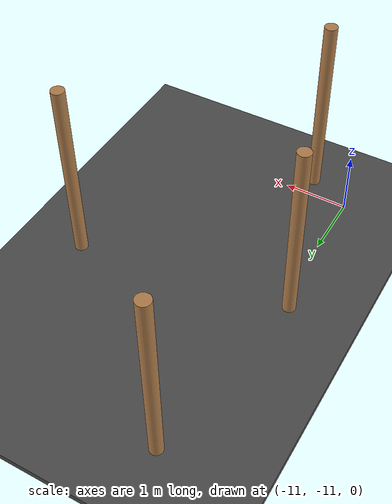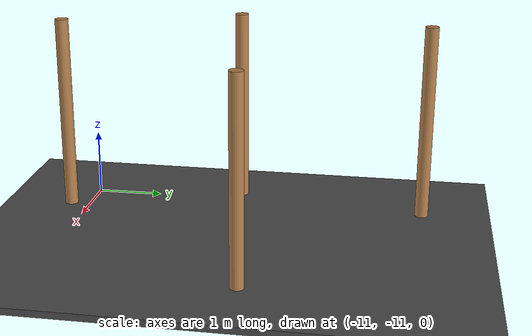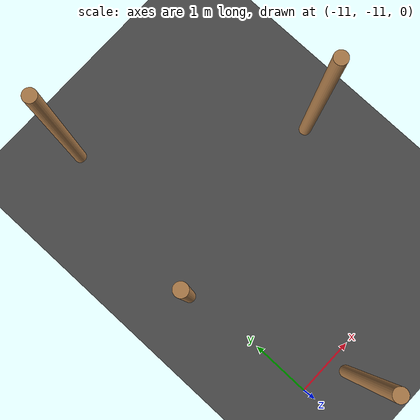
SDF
<sdf version="1.6">
 <world name="default">
  <include><uri>model://ground_plane</uri></include>
  <model name="asphalt_plane">
   <static>1</static>
   <link name="link">
    <collision name="collision"><geometry><box><size>42.4866 44.6464 0.1</size></box></geometry></collision>
    <visual name="visual">
     <cast_shadows>0</cast_shadows>
     <geometry><box><size>42.4866 44.6464 0.1</size></box></geometry>
     <material>
      <script>
       <uri>model://asphalt_plane/materials/scripts</uri>
       <uri>model://asphalt_plane/materials/textures</uri>
       <name>vrc/asphalt</name>
      </script>
     </material>
    </visual>
   </link>
  </model>
  <model name="wooden_cylinder1_clone_6">
   <pose>-10.6948 -5.80428 7.4e-05 0 -0 0</pose>
   <link name="wooden_cylinder::link_0">
    <pose>0 0 1.5 0 -0 0</pose>
    <inertial>
     <mass>1</mass>
     <inertia><ixx>0.145833</ixx><ixy>0</ixy><ixz>0</ixz><iyy>0.145833</iyy><iyz>0</iyz><izz>0.125</izz></inertia>
    </inertial>
    <visual name="visual">
     <geometry><cylinder><radius>0.1</radius><length>3</length></cylinder></geometry>
     <material>
      <lighting>1</lighting>
      <script><uri>file://media/materials/scripts/gazebo.material</uri><name>Gazebo/Wood</name></script>
      <ambient>0.3 0.3 0.3 1</ambient>
      <diffuse>0.7 0.7 0.7 1</diffuse>
      <specular>0.01 0.01 0.01 1</specular>
      <emissive>0 0 0 1</emissive>
      <shader type="vertex"><normal_map>__default__</normal_map></shader>
     </material>
    </visual>
    <collision name="collision">
     <geometry><cylinder><radius>0.1</radius><length>3</length></cylinder></geometry>
     <surface>
      <friction>
       <ode><mu>1</mu><mu2>1</mu2><fdir1>0 0 0</fdir1><slip1>0</slip1><slip2>0</slip2></ode>
       <torsional>
        <coefficient>1</coefficient>
        <patch_radius>0</patch_radius>
        <surface_radius>0</surface_radius>
        <use_patch_radius>1</use_patch_radius>
        <ode><slip>0</slip></ode>
       </torsional>
      </friction>
      <bounce><restitution_coefficient>0</restitution_coefficient><threshold>1e+06</threshold></bounce>
      <contact>
       <collide_without_contact>0</collide_without_contact>
       <collide_without_contact_bitmask>1</collide_without_contact_bitmask>
       <collide_bitmask>1</collide_bitmask>
       <ode>
        <soft_cfm>0</soft_cfm>
        <soft_erp>0.2</soft_erp>
        <kp>1e+13</kp>
        <kd>1</kd>
        <max_vel>0.01</max_vel>
        <min_depth>0</min_depth>
       </ode>
       <bullet>
        <split_impulse>1</split_impulse>
        <split_impulse_penetration_threshold>-0.01</split_impulse_penetration_threshold>
        <soft_cfm>0</soft_cfm>
        <soft_erp>0.2</soft_erp>
        <kp>1e+13</kp>
        <kd>1</kd>
       </bullet>
      </contact>
     </surface>
    </collision>
   </link>
   <static>1</static>
  </model>
  <model name="wooden_cylinder1_clone_10">
   <pose>-11.1493 -8.66709 -8.7e-05 0 -0 0</pose>
   <link name="wooden_cylinder::link_0">
    <pose>0 0 1.5 0 -0 0</pose>
    <inertial>
     <mass>1</mass>
     <inertia><ixx>0.145833</ixx><ixy>0</ixy><ixz>0</ixz><iyy>0.145833</iyy><iyz>0</iyz><izz>0.125</izz></inertia>
    </inertial>
    <visual name="visual">
     <geometry><cylinder><radius>0.1</radius><length>3</length></cylinder></geometry>
     <material>
      <lighting>1</lighting>
      <script><uri>file://media/materials/scripts/gazebo.material</uri><name>Gazebo/Wood</name></script>
      <ambient>0.3 0.3 0.3 1</ambient>
      <diffuse>0.7 0.7 0.7 1</diffuse>
      <specular>0.01 0.01 0.01 1</specular>
      <emissive>0 0 0 1</emissive>
      <shader type="vertex"><normal_map>__default__</normal_map></shader>
     </material>
    </visual>
    <collision name="collision">
     <geometry><cylinder><radius>0.1</radius><length>3</length></cylinder></geometry>
     <surface>
      <friction>
       <ode><mu>1</mu><mu2>1</mu2><fdir1>0 0 0</fdir1><slip1>0</slip1><slip2>0</slip2></ode>
       <torsional>
        <coefficient>1</coefficient>
        <patch_radius>0</patch_radius>
        <surface_radius>0</surface_radius>
        <use_patch_radius>1</use_patch_radius>
        <ode><slip>0</slip></ode>
       </torsional>
      </friction>
      <bounce><restitution_coefficient>0</restitution_coefficient><threshold>1e+06</threshold></bounce>
      <contact>
       <collide_without_contact>0</collide_without_contact>
       <collide_without_contact_bitmask>1</collide_without_contact_bitmask>
       <collide_bitmask>1</collide_bitmask>
       <ode>
        <soft_cfm>0</soft_cfm>
        <soft_erp>0.2</soft_erp>
        <kp>1e+13</kp>
        <kd>1</kd>
        <max_vel>0.01</max_vel>
        <min_depth>0</min_depth>
       </ode>
       <bullet>
        <split_impulse>1</split_impulse>
        <split_impulse_penetration_threshold>-0.01</split_impulse_penetration_threshold>
        <soft_cfm>0</soft_cfm>
        <soft_erp>0.2</soft_erp>
        <kp>1e+13</kp>
        <kd>1</kd>
       </bullet>
      </contact>
     </surface>
    </collision>
   </link>
   <static>1</static>
  </model>
  <model name="wooden_cylinder1_clone_13">
   <pose>-7.85705 -8.18766 1.7e-05 0 -0 0</pose>
   <link name="wooden_cylinder::link_0">
    <pose>0 0 1.5 0 -0 0</pose>
    <inertial>
     <mass>1</mass>
     <inertia><ixx>0.145833</ixx><ixy>0</ixy><ixz>0</ixz><iyy>0.145833</iyy><iyz>0</iyz><izz>0.125</izz></inertia>
    </inertial>
    <visual name="visual">
     <geometry><cylinder><radius>0.1</radius><length>3</length></cylinder></geometry>
     <material>
      <lighting>1</lighting>
      <script><uri>file://media/materials/scripts/gazebo.material</uri><name>Gazebo/Wood</name></script>
      <ambient>0.3 0.3 0.3 1</ambient>
      <diffuse>0.7 0.7 0.7 1</diffuse>
      <specular>0.01 0.01 0.01 1</specular>
      <emissive>0 0 0 1</emissive>
      <shader type="vertex"><normal_map>__default__</normal_map></shader>
     </material>
    </visual>
    <collision name="collision">
     <geometry><cylinder><radius>0.1</radius><length>3</length></cylinder></geometry>
     <surface>
      <friction>
       <ode><mu>1</mu><mu2>1</mu2><fdir1>0 0 0</fdir1><slip1>0</slip1><slip2>0</slip2></ode>
       <torsional>
        <coefficient>1</coefficient>
        <patch_radius>0</patch_radius>
        <surface_radius>0</surface_radius>
        <use_patch_radius>1</use_patch_radius>
        <ode><slip>0</slip></ode>
       </torsional>
      </friction>
      <bounce><restitution_coefficient>0</restitution_coefficient><threshold>1e+06</threshold></bounce>
      <contact>
       <collide_without_contact>0</collide_without_contact>
       <collide_without_contact_bitmask>1</collide_without_contact_bitmask>
       <collide_bitmask>1</collide_bitmask>
       <ode>
        <soft_cfm>0</soft_cfm>
        <soft_erp>0.2</soft_erp>
        <kp>1e+13</kp>
        <kd>1</kd>
        <max_vel>0.01</max_vel>
        <min_depth>0</min_depth>
       </ode>
       <bullet>
        <split_impulse>1</split_impulse>
        <split_impulse_penetration_threshold>-0.01</split_impulse_penetration_threshold>
        <soft_cfm>0</soft_cfm>
        <soft_erp>0.2</soft_erp>
        <kp>1e+13</kp>
        <kd>1</kd>
       </bullet>
      </contact>
     </surface>
    </collision>
   </link>
   <static>1</static>
  </model>
  <model name="wooden_cylinder1_clone_17">
   <pose>-10.3374 -11.2731 -3e-05 0 -0 0</pose>
   <link name="wooden_cylinder::link_0">
    <pose>0 0 1.5 0 -0 0</pose>
    <inertial>
     <mass>1</mass>
     <inertia><ixx>0.145833</ixx><ixy>0</ixy><ixz>0</ixz><iyy>0.145833</iyy><iyz>0</iyz><izz>0.125</izz></inertia>
    </inertial>
    <visual name="visual">
     <geometry><cylinder><radius>0.1</radius><length>3</length></cylinder></geometry>
     <material>
      <lighting>1</lighting>
      <script><uri>file://media/materials/scripts/gazebo.material</uri><name>Gazebo/Wood</name></script>
      <ambient>0.3 0.3 0.3 1</ambient>
      <diffuse>0.7 0.7 0.7 1</diffuse>
      <specular>0.01 0.01 0.01 1</specular>
      <emissive>0 0 0 1</emissive>
      <shader type="vertex"><normal_map>__default__</normal_map></shader>
     </material>
    </visual>
    <collision name="collision">
     <geometry><cylinder><radius>0.1</radius><length>3</length></cylinder></geometry>
     <surface>
      <friction>
       <ode><mu>1</mu><mu2>1</mu2><fdir1>0 0 0</fdir1><slip1>0</slip1><slip2>0</slip2></ode>
       <torsional>
        <coefficient>1</coefficient>
        <patch_radius>0</patch_radius>
        <surface_radius>0</surface_radius>
        <use_patch_radius>1</use_patch_radius>
        <ode><slip>0</slip></ode>
       </torsional>
      </friction>
      <bounce><restitution_coefficient>0</restitution_coefficient><threshold>1e+06</threshold></bounce>
      <contact>
       <collide_without_contact>0</collide_without_contact>
       <collide_without_contact_bitmask>1</collide_without_contact_bitmask>
       <collide_bitmask>1</collide_bitmask>
       <ode>
        <soft_cfm>0</soft_cfm>
        <soft_erp>0.2</soft_erp>
        <kp>1e+13</kp>
        <kd>1</kd>
        <max_vel>0.01</max_vel>
        <min_depth>0</min_depth>
       </ode>
       <bullet>
        <split_impulse>1</split_impulse>
        <split_impulse_penetration_threshold>-0.01</split_impulse_penetration_threshold>
        <soft_cfm>0</soft_cfm>
        <soft_erp>0.2</soft_erp>
        <kp>1e+13</kp>
        <kd>1</kd>
       </bullet>
      </contact>
     </surface>
    </collision>
   </link>
   <static>1</static>
  </model>
 </world>
</sdf>
